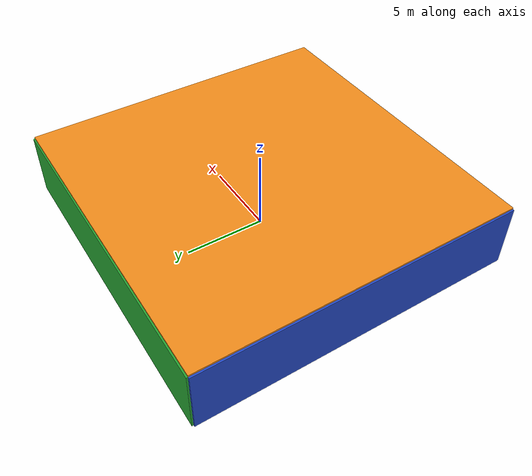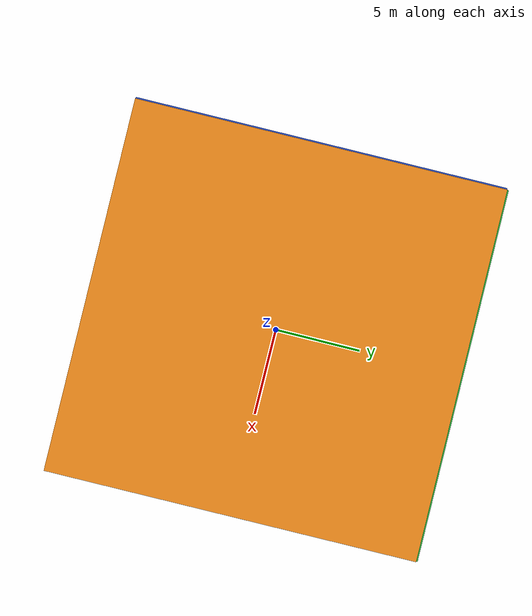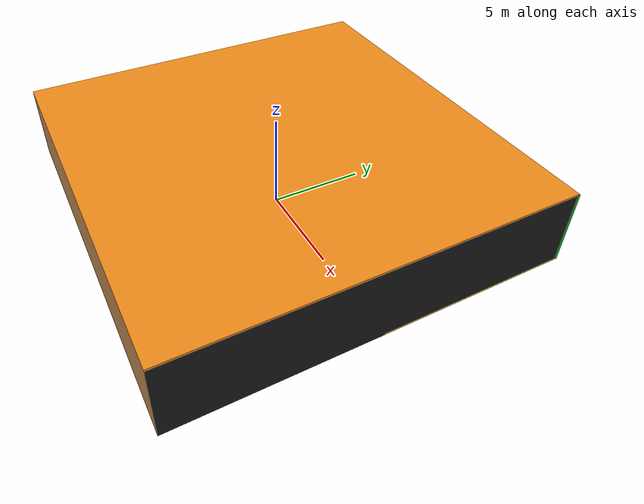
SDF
<sdf version="1.4">
 <world name="default">
  <physics type="ode">
   <max_step_size>0.001</max_step_size>
   <real_time_factor>1</real_time_factor>
   <real_time_update_rate>1000</real_time_update_rate>
   <gravity>0 0 -9.8</gravity>
  </physics>
  <scene><ambient>0.4 0.4 0.4 1</ambient><background>0.7 0.7 0.7 1</background><shadows>1</shadows></scene>
  <model name="Surrounding">
   <static>1</static>
   <link name="Ceiling">
    <collision name="Ceiling_Collision"><geometry><box><size>20 20 0.1</size></box></geometry></collision>
    <visual name="Ceiling_Visual">
     <geometry><box><size>20 20 0.1</size></box></geometry>
     <material>
      <script><uri>file://media/materials/scripts/gazebo.material</uri><name>Gazebo/Orange</name></script>
     </material>
    </visual>
    <pose>0 0 4.05 0 0 0</pose>
   </link>
   <link name="Wall_South">
    <collision name="Wall_South_Collision">
     <geometry><box><size>20 0 4</size></box></geometry>
     <pose>0 0 2 0 -0 0</pose>
    </collision>
    <visual name="Wall_South_Visual">
     <pose>0 0 2 0 -0 0</pose>
     <geometry><box><size>20 0 4</size></box></geometry>
     <material>
      <script><uri>file://media/materials/scripts/gazebo.material</uri><name>Gazebo/WoodPallet</name></script>
     </material>
    </visual>
    <velocity_decay><linear>0</linear><angular>0</angular></velocity_decay>
    <pose>0 -10 0 0 -0 0</pose>
   </link>
   <link name="Wall_East">
    <collision name="Wall_21_Collision">
     <geometry><box><size>20 0 4</size></box></geometry>
     <pose>0 0 2 0 -0 0</pose>
    </collision>
    <visual name="Wall_21_Visual">
     <pose>0 0 2 0 -0 0</pose>
     <geometry><box><size>20 0 4</size></box></geometry>
     <material>
      <script><uri>file://media/materials/scripts/gazebo.material</uri><name>Gazebo/Black</name></script>
     </material>
    </visual>
    <velocity_decay><linear>0</linear><angular>0</angular></velocity_decay>
    <pose>10 0 0 0 -0 1.5708</pose>
   </link>
   <link name="Wall_North">
    <collision name="Wall_22_Collision">
     <geometry><box><size>20 0.2 4</size></box></geometry>
     <pose>0 0 2 0 -0 0</pose>
    </collision>
    <visual name="Wall_22_Visual">
     <pose>0 0 2 0 -0 0</pose>
     <geometry><box><size>20 0.2 4</size></box></geometry>
     <material>
      <script><uri>file://media/materials/scripts/gazebo.material</uri><name>Gazebo/GreenGlow</name></script>
     </material>
    </visual>
    <velocity_decay><linear>0</linear><angular>0</angular></velocity_decay>
    <pose>0 10 0 0 -0 0</pose>
   </link>
   <link name="Wall_West">
    <collision name="Wall_23_Collision">
     <geometry><box><size>20 0.2 4</size></box></geometry>
     <pose>0 0 2 0 -0 0</pose>
    </collision>
    <visual name="Wall_23_Visual">
     <pose>0 0 2 0 -0 0</pose>
     <geometry><box><size>20 0.2 4</size></box></geometry>
     <material>
      <script><uri>file://media/materials/scripts/gazebo.material</uri><name>Gazebo/BlueGlow</name></script>
     </material>
    </visual>
    <velocity_decay><linear>0</linear><angular>0</angular></velocity_decay>
    <pose>-10 0 0 0 0 -1.5708</pose>
   </link>
   <link name="Ground_link">
    <collision name="collision">
     <pose>0 0 .05 0 -0 0</pose>
     <geometry><box><size>20 20 0.1</size></box></geometry>
    </collision>
    <visual name="visual">
     <pose>0 0 .05 0 -0 0</pose>
     <geometry><box><size>20 20 0.1</size></box></geometry>
     <material>
      <script><uri>file://media/materials/scripts/gazebo.material</uri><name>Gazebo/Gold</name></script>
     </material>
    </visual>
   </link>
   <static>1</static>
  </model>
  <spherical_coordinates>
   <surface_model>EARTH_WGS84</surface_model>
   <latitude_deg>0</latitude_deg>
   <longitude_deg>0</longitude_deg>
   <elevation>0</elevation>
   <heading_deg>0</heading_deg>
  </spherical_coordinates>
  <light name="lightball_0" type="diffuse">
   <diffuse>0.8 0.8 0.8 1</diffuse>
   <specular>0.2 0.2 0.2 1</specular>
   <attenuation>
    <range>100</range>
    <constant>0.7</constant>
    <linear>0.01</linear>
    <quadratic>0.001</quadratic>
   </attenuation>
   <direction>-0.5 0.1 -0.9</direction>
   <pose>-1.11972852829 -5.95047647992 3.15904243278 0 0 0</pose>
  </light>
  <light name="lightball_1" type="diffuse">
   <diffuse>0.8 0.8 0.8 1</diffuse>
   <specular>0.2 0.2 0.2 1</specular>
   <attenuation>
    <range>100</range>
    <constant>0.7</constant>
    <linear>0.01</linear>
    <quadratic>0.001</quadratic>
   </attenuation>
   <direction>-0.5 0.1 -0.9</direction>
   <pose>9.02842728889 -5.04155187946 1.88611845642 0 0 0</pose>
  </light>
  <light name="lightball_2" type="diffuse">
   <diffuse>0.8 0.8 0.8 1</diffuse>
   <specular>0.2 0.2 0.2 1</specular>
   <attenuation>
    <range>100</range>
    <constant>0.7</constant>
    <linear>0.01</linear>
    <quadratic>0.001</quadratic>
   </attenuation>
   <direction>-0.5 0.1 -0.9</direction>
   <pose>-2.53365679951 5.73298721487 2.5560228201 0 0 0</pose>
  </light>
  <light name="lightball_3" type="diffuse">
   <diffuse>0.8 0.8 0.8 1</diffuse>
   <specular>0.2 0.2 0.2 1</specular>
   <attenuation>
    <range>100</range>
    <constant>0.7</constant>
    <linear>0.01</linear>
    <quadratic>0.001</quadratic>
   </attenuation>
   <direction>-0.5 0.1 -0.9</direction>
   <pose>-4.45238880692 -9.98220283164 2.12924107601 0 0 0</pose>
  </light>
  <light name="lightball_4" type="diffuse">
   <diffuse>0.8 0.8 0.8 1</diffuse>
   <specular>0.2 0.2 0.2 1</specular>
   <attenuation>
    <range>100</range>
    <constant>0.7</constant>
    <linear>0.01</linear>
    <quadratic>0.001</quadratic>
   </attenuation>
   <direction>-0.5 0.1 -0.9</direction>
   <pose>-8.79473302339 4.68643104613 0.981792567339 0 0 0</pose>
  </light>
  <light name="lightball_5" type="diffuse">
   <diffuse>0.8 0.8 0.8 1</diffuse>
   <specular>0.2 0.2 0.2 1</specular>
   <attenuation>
    <range>100</range>
    <constant>0.7</constant>
    <linear>0.01</linear>
    <quadratic>0.001</quadratic>
   </attenuation>
   <direction>-0.5 0.1 -0.9</direction>
   <pose>-3.49251189191 6.0455542577 2.09081351513 0 0 0</pose>
  </light>
  <light name="lightball_6" type="diffuse">
   <diffuse>0.8 0.8 0.8 1</diffuse>
   <specular>0.2 0.2 0.2 1</specular>
   <attenuation>
    <range>100</range>
    <constant>0.7</constant>
    <linear>0.01</linear>
    <quadratic>0.001</quadratic>
   </attenuation>
   <direction>-0.5 0.1 -0.9</direction>
   <pose>9.33338566168 3.42334335336 3.55897219713 0 0 0</pose>
  </light>
  <light name="lightball_7" type="diffuse">
   <diffuse>0.8 0.8 0.8 1</diffuse>
   <specular>0.2 0.2 0.2 1</specular>
   <attenuation>
    <range>100</range>
    <constant>0.7</constant>
    <linear>0.01</linear>
    <quadratic>0.001</quadratic>
   </attenuation>
   <direction>-0.5 0.1 -0.9</direction>
   <pose>-8.61126742793 -4.86659572319 0.574192840328 0 0 0</pose>
  </light>
  <light name="lightball_8" type="diffuse">
   <diffuse>0.8 0.8 0.8 1</diffuse>
   <specular>0.2 0.2 0.2 1</specular>
   <attenuation>
    <range>100</range>
    <constant>0.7</constant>
    <linear>0.01</linear>
    <quadratic>0.001</quadratic>
   </attenuation>
   <direction>-0.5 0.1 -0.9</direction>
   <pose>3.56625421523 6.20517823425 0.597027477904 0 0 0</pose>
  </light>
  <include><uri>model://cabinet</uri><pose>4.13555423751 -1.19103366094 0 0 0 1.02513675697</pose></include>
 </world>
</sdf>

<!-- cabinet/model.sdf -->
<sdf version="1.5">
  <model name="cabinet">
    <static>true</static>
    <link name="cabinet_bottom_plate">
      <inertial>
        <pose>0 0 -1 0 0 0</pose>
        <inertia>
          <ixx>2.050000</ixx>
          <ixy>0</ixy>
          <ixz>0</ixz>
          <iyy>2.050000</iyy>
          <iyz>0</iyz>
          <izz>2.050000</izz>
        </inertia>
        <mass>25.000000</mass>
      </inertial>
      <collision name="cabinet_bottom_plate_geom">
        <pose>0 0 0.010000 0 0 0</pose>
        <geometry>
          <box>
            <size>0.450000 0.450000 0.020000</size>
          </box>
        </geometry>
      </collision>
      <visual name="cabinet_bottom_plate_geom_visual">
        <pose>0 0 0.010000 0 0 0</pose>
        <geometry>
          <box>
            <size>0.450000 0.450000 0.020000</size>
          </box>
        </geometry>
        <material>
          <script>
            <uri>model://media/materials/scripts/gazebo.material</uri>
            <name>Gazebo/Wood</name>
          </script>
        </material>
      </visual>
      <collision name="cabinet_bottom_plate_geom_cabinet_back_plate">
        <pose>0.235000 0 0.510000 0 0 0</pose>
        <geometry>
          <box>
            <size>0.020000 0.450000 1.020000</size>
          </box>
        </geometry>
      </collision>
      <visual name="cabinet_bottom_plate_geom_cabinet_back_plate_visual">
        <pose>0.235000 0 0.510000 0 0 0</pose>
        <geometry>
          <box>
            <size>0.020000 0.450000 1.020000</size>
          </box>
        </geometry>
        <material>
          <script>
            <uri>model://media/materials/scripts/gazebo.material</uri>
            <name>Gazebo/Wood</name>
          </script>
        </material>
      </visual>
      <collision name="cabinet_bottom_plate_geom_cabinet_left_plate">
        <pose>0 0.235000 0.510000 0 0 0</pose>
        <geometry>
          <box>
            <size>0.450000 0.020000 1.020000</size>
          </box>
        </geometry>
      </collision>
      <visual name="cabinet_bottom_plate_geom_cabinet_left_plate_visual">
        <pose>0 0.235000 0.510000 0 0 0</pose>
        <geometry>
          <box>
            <size>0.450000 0.020000 1.020000</size>
          </box>
        </geometry>
        <material>
          <script>
            <uri>model://media/materials/scripts/gazebo.material</uri>
            <name>Gazebo/Wood</name>
          </script>
        </material>
      </visual>
      <collision name="cabinet_bottom_plate_geom_cabinet_middle_plate">
        <pose>0 0 0.510000 0 0 0</pose>
        <geometry>
          <box>
            <size>0.450000 0.450000 0.020000</size>
          </box>
        </geometry>
      </collision>
      <visual name="cabinet_bottom_plate_geom_cabinet_middle_plate_visual">
        <pose>0 0 0.510000 0 0 0</pose>
        <geometry>
          <box>
            <size>0.450000 0.450000 0.020000</size>
          </box>
        </geometry>
        <material>
          <script>
            <uri>model://media/materials/scripts/gazebo.material</uri>
            <name>Gazebo/Wood</name>
          </script>
        </material>
      </visual>
      <collision name="cabinet_bottom_plate_geom_cabinet_right_plate">
        <pose>0 -0.235000 0.510000 0 0 0</pose>
        <geometry>
          <box>
            <size>0.450000 0.020000 1.020000</size>
          </box>
        </geometry>
      </collision>
      <visual name="cabinet_bottom_plate_geom_cabinet_right_plate_visual">
        <pose>0 -0.235000 0.510000 0 0 0</pose>
        <geometry>
          <box>
            <size>0.450000 0.020000 1.020000</size>
          </box>
        </geometry>
        <material>
          <script>
            <uri>model://media/materials/scripts/gazebo.material</uri>
            <name>Gazebo/Wood</name>
          </script>
        </material>
      </visual>
      <collision name="cabinet_bottom_plate_geom_cabinet_top_plate">
        <pose>0 0 1.010000 0 0 0</pose>
        <geometry>
          <box>
            <size>0.450000 0.450000 0.020000</size>
          </box>
        </geometry>
      </collision>
      <visual name="cabinet_bottom_plate_geom_cabinet_top_plate_visual">
        <pose>0 0 1.010000 0 0 0</pose>
        <geometry>
          <box>
            <size>0.450000 0.450000 0.020000</size>
          </box>
        </geometry>
        <material>
          <script>
            <uri>model://media/materials/scripts/gazebo.material</uri>
            <name>Gazebo/Wood</name>
          </script>
        </material>
      </visual>
    </link>
  </model>
</sdf>
